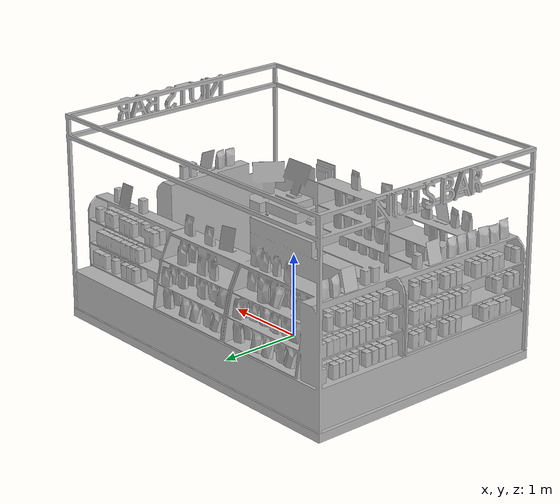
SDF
<?xml version='1.0' encoding='utf-8'?>
<sdf version="1.6">
  <model name="RetailKiosk1">
   <static>true</static>
    <link name="body">
      <pose>0 0 0 0 0 0</pose>

      <visual name="visual">
        <geometry>
          <mesh>
            <uri>model://RetailKiosk1/meshes/RetailKiosk1.obj</uri>
          </mesh>
        </geometry>
      </visual>

      <collision name="collision">
        <geometry>
          <mesh>
            <uri>model://RetailKiosk1/meshes/RetailKiosk1_Col.obj</uri>
          </mesh>
        </geometry>
      </collision>

    </link>
  </model>
</sdf>
